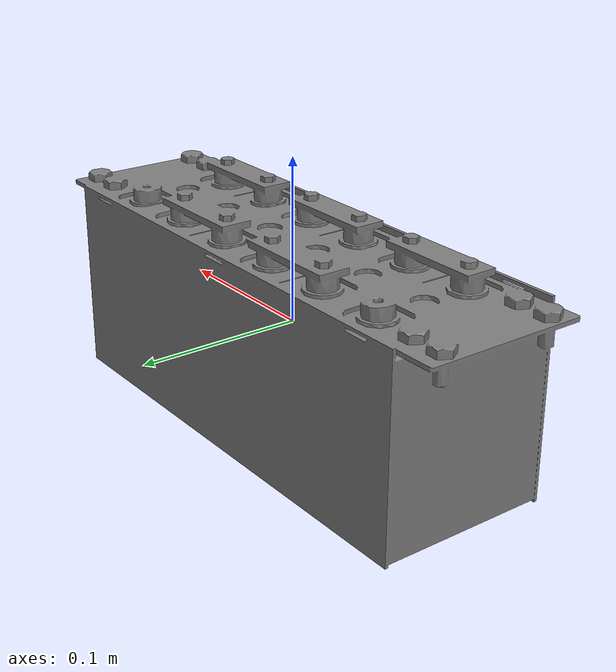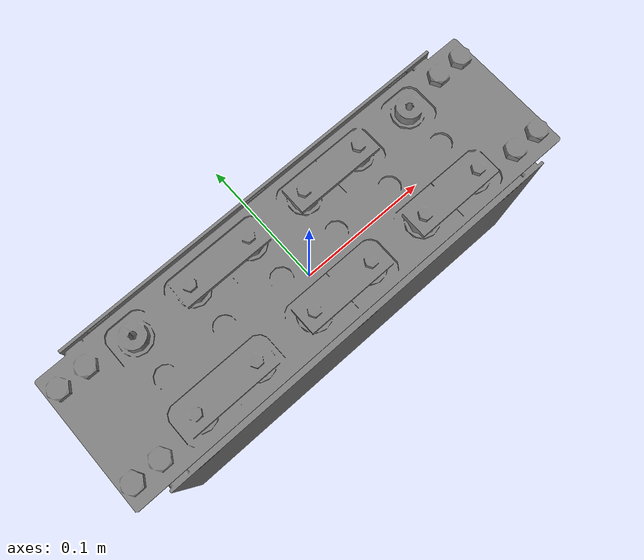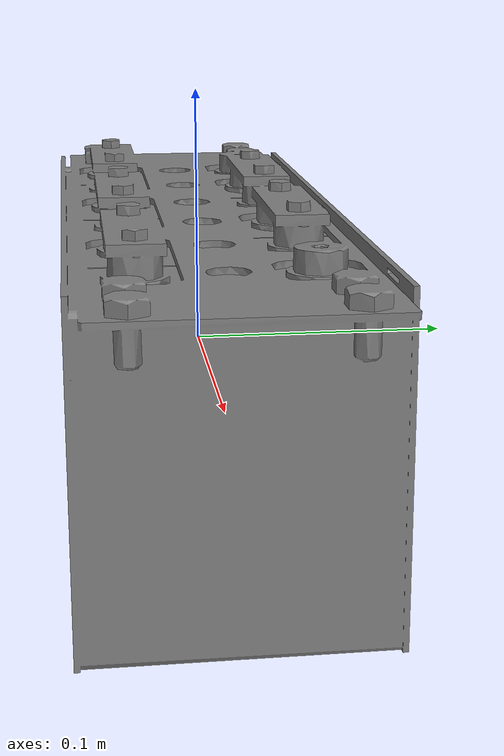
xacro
<?xml version="1.0"?>
<robot name="battery_module" xmlns:xacro="http://ros.org/wiki/xacro">

  <!-- battery_module center of obj/stl -->
  <link name="battery_module">
        <visual>
        <origin rpy="0 0 0"/>
        <geometry>
          <mesh filename="file:///objects/battery_module/meshes/battery_module.stl">
            <scale>1 1 1</scale>
          </mesh>
        </geometry>
        <material name="grey">
          <color rgba="0.5 0.5 0.5 1.0"/>
        </material>
      </visual>
  </link>

  <!-- battery_module grasping frame -->
  <link name="battery_module_grasping_frame">
    </link>

  <joint name="battery_module_to_battery_module_grasping_frame" type="fixed">
    <origin xyz="0.0 0.0 0.025" rpy="0 0 0"/>
    <parent link="battery_module"/>
    <child link="battery_module_grasping_frame" />
  </joint>

  <!-- battery_module base -->
  <link name="battery_module_base">
    </link>

  <joint name="battery_module_to_battery_module_base" type="fixed">
    <origin xyz="0.0 0.0 -0.0668" rpy="0 0 0"/>
    <parent link="battery_module"/>
    <child link="battery_module_base" />
  </joint>

</robot>
